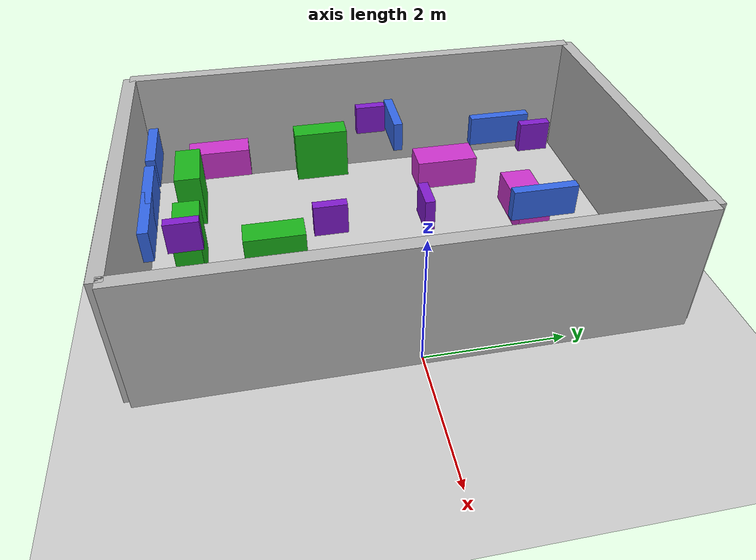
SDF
<sdf version='1.9'>
  <world name='empty'>
    <physics name='1ms' type='dart'>
      <max_step_size>0.001</max_step_size>
      <real_time_factor>1</real_time_factor>
      <real_time_update_rate>250</real_time_update_rate>
    </physics>
    <plugin name='gz::sim::systems::Sensors' filename='gz-sim-sensors-system'>
      <render_engine>ogre2</render_engine>
    </plugin>
    <plugin name='gz::sim::systems::Imu' filename='gz-sim-imu-system'/>
    <plugin name='gz::sim::systems::Physics' filename='gz-sim-physics-system'/>
    <plugin name='gz::sim::systems::SceneBroadcaster' filename='gz-sim-scene-broadcaster-system'/>
    <plugin name='gz::sim::systems::UserCommands' filename='gz-sim-user-commands-system'/>
    <gravity>0 0 -9.8</gravity>
    <magnetic_field>6e-06 2.3e-05 -4.2e-05</magnetic_field>
    <atmosphere type='adiabatic'/>
    <scene>
      <ambient>0.4 0.4 0.4 1</ambient>
      <background>0.7 0.7 0.7 1</background>
      <shadows>true</shadows>
    </scene>
    <model name='room'>
      <static>true</static>
      <link name='north_wall'>
        <pose>-2.5 3.75 1 0 -0 0</pose>
        <collision name='c'>
          <geometry>
            <box>
              <size>5 0.2 2</size>
            </box>
          </geometry>
          <surface>
            <friction>
              <ode/>
            </friction>
            <bounce/>
            <contact/>
          </surface>
        </collision>
        <visual name='v'>
          <geometry>
            <box>
              <size>5 0.2 2</size>
            </box>
          </geometry>
        </visual>
        <inertial>
          <pose>0 0 0 0 -0 0</pose>
          <mass>1</mass>
          <inertia>
            <ixx>1</ixx>
            <ixy>0</ixy>
            <ixz>0</ixz>
            <iyy>1</iyy>
            <iyz>0</iyz>
            <izz>1</izz>
          </inertia>
        </inertial>
        <enable_wind>false</enable_wind>
      </link>

      <link name='south_wall'>
        <pose>-2.5 -3.75 1 0 -0 0</pose>
        <collision name='c'>
          <geometry>
            <box>
              <size>5 0.2 2</size>
            </box>
          </geometry>
          <surface>
            <friction>
              <ode/>
            </friction>
            <bounce/>
            <contact/>
          </surface>
        </collision>
        <visual name='v'>
          <geometry>
            <box>
              <size>5 0.2 2</size>
            </box>
          </geometry>
        </visual>
        <inertial>
          <pose>0 0 0 0 -0 0</pose>
          <mass>1</mass>
          <inertia>
            <ixx>1</ixx>
            <ixy>0</ixy>
            <ixz>0</ixz>
            <iyy>1</iyy>
            <iyz>0</iyz>
            <izz>1</izz>
          </inertia>
        </inertial>
        <enable_wind>false</enable_wind>
      </link>

      <link name='east_wall'>
        <pose>0 0 1 0 -0 1.5708</pose>
        <collision name='c'>
          <geometry>
            <box>
              <size>0.27.5  2</size>
            </box>
          </geometry>
          <surface>
            <friction>
              <ode/>
            </friction>
            <bounce/>
            <contact/>
          </surface>
        </collision>
        <visual name='v'>
          <geometry>
            <box>
              <size>7.5 0.2 2</size>
            </box>
          </geometry>
        </visual>
        <inertial>
          <pose>0 0 0 0 -0 0</pose>
          <mass>1</mass>
          <inertia>
            <ixx>1</ixx>
            <ixy>0</ixy>
            <ixz>0</ixz>
            <iyy>1</iyy>
            <iyz>0</iyz>
            <izz>1</izz>
          </inertia>
        </inertial>
        <enable_wind>false</enable_wind>
      </link>
      <link name='west_wall'>
        <pose>-5 0 1 0 -0 1.5708</pose>
        <collision name='c'>
          <geometry>
            <box>
              <size>7.5 0.2 2</size>
            </box>
          </geometry>
          <surface>
            <friction>
              <ode/>
            </friction>
            <bounce/>
            <contact/>
          </surface>
        </collision>
        <visual name='v'>
          <geometry>
            <box>
              <size>7.5 0.2 2</size>
            </box>
          </geometry>
        </visual>
        <inertial>
          <pose>0 0 0 0 -0 0</pose>
          <mass>1</mass>
          <inertia>
            <ixx>1</ixx>
            <ixy>0</ixy>
            <ixz>0</ixz>
            <iyy>1</iyy>
            <iyz>0</iyz>
            <izz>1</izz>
          </inertia>
        </inertial>
        <enable_wind>false</enable_wind>
      </link>
      <pose>0 0 0 0 -0 0</pose>
      <self_collide>false</self_collide>
    </model>
    <model name='ground_plane'>
      <static>true</static>
      <link name='link'>
        <collision name='surface'>
          <geometry>
            <plane>
              <normal>0 0 1</normal>
              <size>100 100</size>
            </plane>
          </geometry>
          <surface>
            <friction>
              <ode>
                <mu>60</mu>
                <mu2>0</mu2>
              </ode>
            </friction>
            <bounce/>
            <contact/>
          </surface>
        </collision>
        <visual name='surface'>
          <geometry>
            <plane>
              <normal>0 0 1</normal>
              <size>100 100</size>
            </plane>
          </geometry>
          <material>
            <ambient>0.8 0.8 0.8 1</ambient>
            <diffuse>0.8 0.8 0.8 1</diffuse>
          </material>
        </visual>
        <pose>0 0 0 0 -0 0</pose>
        <inertial>
          <pose>0 0 0 0 -0 0</pose>
          <mass>1</mass>
          <inertia>
            <ixx>1</ixx>
            <ixy>0</ixy>
            <ixz>0</ixz>
            <iyy>1</iyy>
            <iyz>0</iyz>
            <izz>1</izz>
          </inertia>
        </inertial>
        <enable_wind>false</enable_wind>
      </link>
      <pose>0 0 0 0 -0 0</pose>
      <self_collide>false</self_collide>
    </model>

<!-- CUSTOMER COUNTER -->
<model name='cc_1'>
  <pose>-1 3 0.5 0 0 0</pose>

  <link name='link'>
    <inertial>
          <inertia>
            <ixx>0.16666</ixx>
            <ixy>0</ixy>
            <ixz>0</ixz>
            <iyy>0.16666</iyy>
            <iyz>0</iyz>
            <izz>0.16666</izz>
          </inertia>
          <mass>1</mass>
          <pose>0 0 0 0 -0 0</pose>
        </inertial>

    <collision name='c'><geometry><box><size>1 0.5 0.5</size></box></geometry>
    <surface>
            <friction>
              <ode>
                <mu>10</mu><!-- ADDED: high friction so object resists sliding -->
                <mu2>10</mu2>
              </ode>
            </friction>
            <bounce/>
            <contact/>
          </surface>
          </collision>
    <visual name='v'>
      <geometry><box><size>1 0.5 0.5</size></box></geometry>
      <material><ambient>0.9 0.4 0.1 1</ambient><diffuse>0.9 0.4 0.1 1</diffuse></material>
    </visual>
  </link>
</model>

<!--WORKBENCHES-->
<model name='wb_top'>
  <pose>-2.5 2.25 0.5 0 0 0</pose>

  <link name='link'>
    <inertial>
          <inertia>
            <ixx>0.16666</ixx>
            <ixy>0</ixy>
            <ixz>0</ixz>
            <iyy>0.16666</iyy>
            <iyz>0</iyz>
            <izz>0.16666</izz>
          </inertia>
          <mass>1</mass>
          <pose>0 0 0 0 -0 0</pose>
        </inertial>

    <collision name='c'><geometry><box><size>1 0.5 0.5</size></box></geometry>
    <surface>
            <friction>
              <ode>
                <mu>10</mu><!-- ADDED: high friction so object resists sliding -->
                <mu2>10</mu2>
              </ode>
            </friction>
            <bounce/>
            <contact/>
          </surface>
          </collision>
    <visual name='v'>
      <geometry><box><size>1 0.5 0.5</size></box></geometry>
      <material><ambient>0.8 0.2 0.8 1</ambient><diffuse>0.8 0.2 0.8 1</diffuse></material>
    </visual>
  </link>
</model>

<model name='wb_left'>
  <pose>-3.75 1.25 0.5 0 0 1.5708</pose>  <!-- rotated 90deg -->

  <link name='link'>
    <inertial>
          <inertia>
            <ixx>0.16666</ixx>
            <ixy>0</ixy>
            <ixz>0</ixz>
            <iyy>0.16666</iyy>
            <iyz>0</iyz>
            <izz>0.16666</izz>
          </inertia>
          <mass>1</mass>
          <pose>0 0 0 0 -0 0</pose>
        </inertial>

    <collision name='c'><geometry><box><size>1 0.5 0.5</size></box></geometry>
    <surface>
            <friction>
              <ode>
                <mu>10</mu><!-- ADDED: high friction so object resists sliding -->
                <mu2>10</mu2>
              </ode>
            </friction>
            <bounce/>
            <contact/>
          </surface>
          </collision>
    <visual name='v'>
      <geometry><box><size>1 0.5 0.5</size></box></geometry>
      <material><ambient>0.8 0.2 0.8 1</ambient><diffuse>0.8 0.2 0.8 1</diffuse></material>
    </visual>
  </link>
</model>

<model name='wb_bottom'>
  <pose>-4.75 -2.5 0.5 0 0 1.5708</pose>  <!-- rotated 90deg -->

  <link name='link'>
    <inertial>
          <inertia>
            <ixx>0.16666</ixx>
            <ixy>0</ixy>
            <ixz>0</ixz>
            <iyy>0.16666</iyy>
            <iyz>0</iyz>
            <izz>0.16666</izz>
          </inertia>
          <mass>1</mass>
          <pose>0 0 0 0 -0 0</pose>
        </inertial>

    <collision name='c'><geometry><box><size>1 0.5 0.5</size></box></geometry>
    <surface>
            <friction>
              <ode>
                <mu>10</mu><!-- ADDED: high friction so object resists sliding -->
                <mu2>10</mu2>
              </ode>
            </friction>
            <bounce/>
            <contact/>
          </surface>
          </collision>
    <visual name='v'>
      <geometry><box><size>1 0.5 0.5</size></box></geometry>
      <material><ambient>0.8 0.2 0.8 1</ambient><diffuse>0.8 0.2 0.8 1</diffuse></material>
    </visual>
  </link>
</model>

<!--STORAGE SHELVES-->
<model name='s_top'>
  <pose>-2.5 -3 0.45 0 0 1.5708</pose>
  <static>true</static>

  <link name='link'>
    <inertial>
          <inertia>
            <ixx>0.16666</ixx>
            <ixy>0</ixy>
            <ixz>0</ixz>
            <iyy>0.16666</iyy>
            <iyz>0</iyz>
            <izz>0.16666</izz>
          </inertia>
          <mass>1</mass>
          <pose>0 0 0 0 -0 0</pose>
        </inertial>

    <collision name='c'><geometry><box><size>0.4 0.9 0.9</size></box></geometry>
    <surface>
            <friction>
              <ode>
                <mu>10</mu><!-- ADDED: high friction so object resists sliding -->
                <mu2>10</mu2>
              </ode>
            </friction>
            <bounce/>
            <contact/>
          </surface>
          </collision>
    <visual name='v'>
      <geometry><box><size>0.4 0.9 0.9</size></box></geometry>
      <material><ambient>0.1 0.7 0.1 1</ambient><diffuse>0.1 0.7 0.1 1</diffuse></material>
    </visual>
  </link>
</model>

<model name='s_left_mid'>
  <pose>-4.0 -3 0.45 0 0 1.5708</pose>
  <static>true</static>
  <link name='link'>
    <inertial>
          <inertia>
            <ixx>0.16666</ixx>
            <ixy>0</ixy>
            <ixz>0</ixz>
            <iyy>0.16666</iyy>
            <iyz>0</iyz>
            <izz>0.16666</izz>
          </inertia>
          <mass>1</mass>
          <pose>0 0 0 0 -0 0</pose>
        </inertial>
    <collision name='c'><geometry><box><size>0.4 0.9 0.9</size></box></geometry>
    <surface>
            <friction>
              <ode>
                <mu>10</mu><!-- ADDED: high friction so object resists sliding -->
                <mu2>10</mu2>
              </ode>
            </friction>
            <bounce/>
            <contact/>
          </surface>
          </collision>
    <visual name='v'>
      <geometry><box><size>0.4 0.9 0.9</size></box></geometry>
      <material><ambient>0.1 0.7 0.1 1</ambient><diffuse>0.1 0.7 0.1 1</diffuse></material>
    </visual>
  </link>
</model>

<model name='s_center_mid'>
  <pose>-2 -1.75 0.45 0 0 0</pose>
  <static>true</static>
  <link name='link'>
   <inertial>
          <inertia>
            <ixx>0.16666</ixx>
            <ixy>0</ixy>
            <ixz>0</ixz>
            <iyy>0.16666</iyy>
            <iyz>0</iyz>
            <izz>0.16666</izz>
          </inertia>
          <mass>1</mass>
          <pose>0 0 0 0 -0 0</pose>
        </inertial>

    <collision name='c'><geometry><box><size>0.4 0.9 0.9</size></box></geometry>
    <surface>
            <friction>
              <ode>
                <mu>10</mu><!-- ADDED: high friction so object resists sliding -->
                <mu2>10</mu2>
              </ode>
            </friction>
            <bounce/>
            <contact/>
          </surface>
          </collision>
    <visual name='v'>
      <geometry><box><size>0.4 0.9 0.9</size></box></geometry>
      <material><ambient>0.1 0.7 0.1 1</ambient><diffuse>0.1 0.7 0.1 1</diffuse></material>
    </visual>
  </link>
</model>

<model name='s_bot_left'>
  <pose>-4.75 -0.75 0.45 0 0 0</pose>
  <static>true</static>

  <link name='link'>
    <inertial>
          <inertia>
            <ixx>0.16666</ixx>
            <ixy>0</ixy>
            <ixz>0</ixz>
            <iyy>0.16666</iyy>
            <iyz>0</iyz>
            <izz>0.16666</izz>
          </inertia>
          <mass>1</mass>
          <pose>0 0 0 0 -0 0</pose>
        </inertial>

    <collision name='c'><geometry><box><size>0.4 0.9 0.9</size></box></geometry>
    <surface>
            <friction>
              <ode>
                <mu>10</mu><!-- ADDED: high friction so object resists sliding -->
                <mu2>10</mu2>
              </ode>
            </friction>
            <bounce/>
            <contact/>
          </surface>
          </collision>
    <visual name='v'>
      <geometry><box><size>0.4 0.9 0.9</size></box></geometry>
      <material><ambient>0.1 0.7 0.1 1</ambient><diffuse>0.1 0.7 0.1 1</diffuse></material>
    </visual>
  </link>
</model>

<model name='s_bot_center'>
  <pose>-0.2 0.25 0.45 0 0 0</pose>
  <static>true</static>
  <link name='link'>
    <inertial>
          <inertia>
            <ixx>0.16666</ixx>
            <ixy>0</ixy>
            <ixz>0</ixz>
            <iyy>0.16666</iyy>
            <iyz>0</iyz>
            <izz>0.16666</izz>
          </inertia>
          <mass>1</mass>
          <pose>0 0 0 0 -0 0</pose>
        </inertial>

    <collision name='c'><geometry><box><size>0.4 0.9 0.9</size></box></geometry>
    <surface>
            <friction>
              <ode>
                <mu>1000</mu><!-- ADDED: high friction so object resists sliding -->
                <mu2>100</mu2>
              </ode>
            </friction>
            <bounce/>
            <contact/>
          </surface>
          </collision>
    <visual name='v'>
      <geometry><box><size>0.4 0.9 0.9</size></box></geometry>
      <material><ambient>0.1 0.7 0.1 1</ambient><diffuse>0.1 0.7 0.1 1</diffuse></material>
    </visual>
  </link>
</model>

<!-- BLUE WALLS-->
<model name='bw_north_L'>
  <pose>-1.80 2.25 1.0 0 0 1.5708</pose>

  <link name='link'>
    <inertial>
          <inertia>
            <ixx>0.16666</ixx>
            <ixy>0</ixy>
            <ixz>0</ixz>
            <iyy>0.16666</iyy>
            <iyz>0</iyz>
            <izz>0.16666</izz>
          </inertia>
          <mass>1</mass>
          <pose>0 0 0 0 -0 0</pose>
        </inertial>

    <collision name='c'><geometry><box><size>1 0.15 0.5</size></box></geometry>
    <surface>
            <friction>
              <ode>
                <mu>10</mu><!-- ADDED: high friction so object resists sliding -->
                <mu2>10</mu2>
              </ode>
            </friction>
            <bounce/>
            <contact/>
          </surface>
          </collision>
    <visual name='v'>
      <geometry><box><size>1 0.15 0.5</size></box></geometry>
      <material><ambient>0.2 0.4 0.9 1</ambient><diffuse>0.2 0.4 0.9 1</diffuse></material>
    </visual>
  </link>
</model>

<model name='bw_north_R'>
  <pose>-4 2.25 1.0 0 0 1.5708</pose>

  <link name='link'>
    <inertial>
          <inertia>
            <ixx>0.16666</ixx>
            <ixy>0</ixy>
            <ixz>0</ixz>
            <iyy>0.16666</iyy>
            <iyz>0</iyz>
            <izz>0.16666</izz>
          </inertia>
          <mass>1</mass>
          <pose>0 0 0 0 -0 0</pose>
        </inertial>

    <collision name='c'><geometry><box><size>1 0.15 0.5</size></box></geometry>
    <surface>
            <friction>
              <ode>
                <mu>10</mu><!-- ADDED: high friction so object resists sliding -->
                <mu2>10</mu2>
              </ode>
            </friction>
            <bounce/>
            <contact/>
          </surface>
          </collision>
    <visual name='v'>
      <geometry><box><size>1 0.15 0.5</size></box></geometry>
      <material><ambient>0.2 0.4 0.9 1</ambient><diffuse>0.2 0.4 0.9 1</diffuse></material>
    </visual>
  </link>
</model>

<model name='bw_east_N'>
  <pose>-4.5 0.5 1.0 0 0 0</pose>
  <link name='link'>
    <inertial>
          <inertia>
            <ixx>0.16666</ixx>
            <ixy>0</ixy>
            <ixz>0</ixz>
            <iyy>0.16666</iyy>
            <iyz>0</iyz>
            <izz>0.16666</izz>
          </inertia>
          <mass>1</mass>
          <pose>0 0 0 0 -0 0</pose>
        </inertial>

    <collision name='c'><geometry><box><size>1 0.15 0.5</size></box></geometry>
    <surface>
            <friction>
              <ode>
                <mu>10</mu><!-- ADDED: high friction so object resists sliding -->
                <mu2>10</mu2>
              </ode>
            </friction>
            <bounce/>
            <contact/>
          </surface>
          </collision>
    <visual name='v'>
      <geometry><box><size>1 0.15 0.5</size></box></geometry>
      <material><ambient>0.2 0.4 0.9 1</ambient><diffuse>0.2 0.4 0.9 1</diffuse></material>
    </visual>
  </link>
</model>

<model name='bw_south_L'>
  <pose>-4.15 -3.5 1.0 0 0 0</pose>

  <link name='link'>
    <inertial>
          <inertia>
            <ixx>0.16666</ixx>
            <ixy>0</ixy>
            <ixz>0</ixz>
            <iyy>0.16666</iyy>
            <iyz>0</iyz>
            <izz>0.16666</izz>
          </inertia>
          <mass>1</mass>
          <pose>0 0 0 0 -0 0</pose>
        </inertial>

    <collision name='c'><geometry><box><size>1 0.15 0.5</size></box></geometry>
    <surface>
            <friction>
              <ode>
                <mu>10</mu><!-- ADDED: high friction so object resists sliding -->
                <mu2>10</mu2>
              </ode>
            </friction>
            <bounce/>
            <contact/>
          </surface>
          </collision>
    <visual name='v'>
      <geometry><box><size>1 0.15 0.5</size></box></geometry>
      <material><ambient>0.2 0.4 0.9 1</ambient><diffuse>0.2 0.4 0.9 1</diffuse></material>
    </visual>
  </link>
</model>

<model name='bw_south_R'>
  <pose>-2.3 -3.5 1.0 0 0 0</pose>

  <link name='link'>
    <inertial>
          <inertia>
            <ixx>0.16666</ixx>
            <ixy>0</ixy>
            <ixz>0</ixz>
            <iyy>0.16666</iyy>
            <iyz>0</iyz>
            <izz>0.16666</izz>
          </inertia>
          <mass>1</mass>
          <pose>0 0 0 0 -0 0</pose>
        </inertial>

    <collision name='c'><geometry><box><size>1 0.15 0.5</size></box></geometry>
    <surface>
            <friction>
              <ode>
                <mu>10</mu><!-- ADDED: high friction so object resists sliding -->
                <mu2>10</mu2>
              </ode>
            </friction>
            <bounce/>
            <contact/>
          </surface>
          </collision>
    <visual name='v'>
      <geometry><box><size>1 0.15 0.5</size></box></geometry>
      <material><ambient>0.2 0.4 0.9 1</ambient><diffuse>0.2 0.4 0.9 1</diffuse></material>
    </visual>
  </link>
</model>

<model name='bw_south'>
  <pose>-3 -3.5 1.0 0 0 0</pose>

  <link name='link'>
    <inertial>
          <inertia>
            <ixx>0.16666</ixx>
            <ixy>0</ixy>
            <ixz>0</ixz>
            <iyy>0.16666</iyy>
            <iyz>0</iyz>
            <izz>0.16666</izz>
          </inertia>
          <mass>1</mass>
          <pose>0 0 0 0 -0 0</pose>
        </inertial>

    <collision name='c'><geometry><box><size>1 0.15 0.5</size></box></geometry>
    <surface>
            <friction>
              <ode>
                <mu>10</mu><!-- ADDED: high friction so object resists sliding -->
                <mu2>10</mu2>
              </ode>
            </friction>
            <bounce/>
            <contact/>
          </surface>
          </collision>
    <visual name='v'>
      <geometry><box><size>1 0.15 0.5</size></box></geometry>
      <material><ambient>0.2 0.4 0.9 1</ambient><diffuse>0.2 0.4 0.9 1</diffuse></material>
    </visual>
  </link>
</model>

<!-- PURPLE WALLS -->
<model name='pw_mid_1'>
  <pose>-3.65 2.75 1.0 0 0 1.5708</pose>

  <link name='link'>
    <inertial>
          <inertia>
            <ixx>0.16666</ixx>
            <ixy>0</ixy>
            <ixz>0</ixz>
            <iyy>0.16666</iyy>
            <iyz>0</iyz>
            <izz>0.16666</izz>
          </inertia>
          <mass>1</mass>
          <pose>0 0 0 0 -0 0</pose>
        </inertial>

    <collision name='c'><geometry><box><size>0.5 0.15 0.5</size></box></geometry>
    <surface>
            <friction>
              <ode>
                <mu>10</mu><!-- ADDED: high friction so object resists sliding -->
                <mu2>10</mu2>
              </ode>
            </friction>
            <bounce/>
            <contact/>
          </surface>
          </collision>
    <visual name='v'>
      <geometry><box><size>0.5 0.15 0.5</size></box></geometry>
      <material><ambient>0.5 0.1 0.8 1</ambient><diffuse>0.5 0.1 0.8 1</diffuse></material>
    </visual>
  </link>
</model>

<model name='pw_mid_2'>
  <pose>-4.75 0.15 1.0 0 0 1.5708</pose>

  <link name='link'>
    <inertial>
          <inertia>
            <ixx>0.16666</ixx>
            <ixy>0</ixy>
            <ixz>0</ixz>
            <iyy>0.16666</iyy>
            <iyz>0</iyz>
            <izz>0.16666</izz>
          </inertia>
          <mass>1</mass>
          <pose>0 0 0 0 -0 0</pose>
        </inertial>

    <collision name='c'><geometry><box><size>0.5 0.15 0.5</size></box></geometry>
    <surface>
            <friction>
              <ode>
                <mu>10</mu><!-- ADDED: high friction so object resists sliding -->
                <mu2>10</mu2>
              </ode>
            </friction>
            <bounce/>
            <contact/>
          </surface>
          </collision>
    <visual name='v'>
      <geometry><box><size>0.5 0.15 0.5</size></box></geometry>
      <material><ambient>0.5 0.1 0.8 1</ambient><diffuse>0.5 0.1 0.8 1</diffuse></material>
    </visual>
  </link>
</model>

<model name='pw_mid_3'>
  <pose>-2 0.5 1.0 0 0 0</pose>

  <link name='link'>
    <inertial>
          <inertia>
            <ixx>0.16666</ixx>
            <ixy>0</ixy>
            <ixz>0</ixz>
            <iyy>0.16666</iyy>
            <iyz>0</iyz>
            <izz>0.16666</izz>
          </inertia>
          <mass>1</mass>
          <pose>0 0 0 0 -0 0</pose>
        </inertial>

    <collision name='c'><geometry><box><size>0.5 0.15 0.5</size></box></geometry>
    <surface>
            <friction>
              <ode>
                <mu>10</mu><!-- ADDED: high friction so object resists sliding -->
                <mu2>10</mu2>
              </ode>
            </friction>
            <bounce/>
            <contact/>
          </surface>
          </collision>
    <visual name='v'>
      <geometry><box><size>0.5 0.15 0.5</size></box></geometry>
      <material><ambient>0.5 0.1 0.8 1</ambient><diffuse>0.5 0.1 0.8 1</diffuse></material>
    </visual>
  </link>
</model>

<model name='pw_mid_4'>
  <pose>-2 -0.92 1.0 0 0 1.5708</pose>

  <link name='link'>
    <inertial>
          <inertia>
            <ixx>0.16666</ixx>
            <ixy>0</ixy>
            <ixz>0</ixz>
            <iyy>0.16666</iyy>
            <iyz>0</iyz>
            <izz>0.16666</izz>
          </inertia>
          <mass>1</mass>
          <pose>0 0 0 0 -0 0</pose>
        </inertial>

    <collision name='c'><geometry><box><size>0.5 0.15 0.5</size></box></geometry>
    <surface>
            <friction>
              <ode>
                <mu>10</mu><!-- ADDED: high friction so object resists sliding -->
                <mu2>10</mu2>
              </ode>
            </friction>
            <bounce/>
            <contact/>
          </surface>
          </collision>
    <visual name='v'>
      <geometry><box><size>0.5 0.15 0.5</size></box></geometry>
      <material><ambient>0.5 0.1 0.8 1</ambient><diffuse>0.5 0.1 0.8 1</diffuse></material>
    </visual>
  </link>
</model>

<model name='pw_mid_7'>
  <pose>-2 -3 1.0 0 0 1.5708</pose>

  <link name='link'>
    <inertial>
          <inertia>
            <ixx>0.16666</ixx>
            <ixy>0</ixy>
            <ixz>0</ixz>
            <iyy>0.16666</iyy>
            <iyz>0</iyz>
            <izz>0.16666</izz>
          </inertia>
          <mass>1</mass>
          <pose>0 0 0 0 -0 0</pose>
        </inertial>

    <collision name='c'><geometry><box><size>0.5 0.15 0.5</size></box></geometry>
    <surface>
            <friction>
              <ode>
                <mu>10</mu><!-- ADDED: high friction so object resists sliding -->
                <mu2>10</mu2>
              </ode>
            </friction>
            <bounce/>
            <contact/>
          </surface>
          </collision>
    <visual name='v'>
      <geometry><box><size>0.5 0.15 0.5</size></box></geometry>
      <material><ambient>0.5 0.1 0.8 1</ambient><diffuse>0.5 0.1 0.8 1</diffuse></material>
    </visual>
  </link>
</model>

    <light name='sun' type='directional'>
      <pose>0 0 10 0 -0 0</pose>
      <cast_shadows>true</cast_shadows>
      <intensity>1</intensity>
      <direction>-0.5 0.1 -0.9</direction>
      <diffuse>1 1 1 1</diffuse>
      <specular>0.1 0.1 0.1 1</specular>
      <attenuation>
        <range>10</range>
        <linear>1</linear>
        <constant>1</constant>
        <quadratic>0</quadratic>
      </attenuation>
      <spot>
        <inner_angle>0</inner_angle>
        <outer_angle>0</outer_angle>
        <falloff>0</falloff>
      </spot>
    </light>
  </world>
</sdf>
